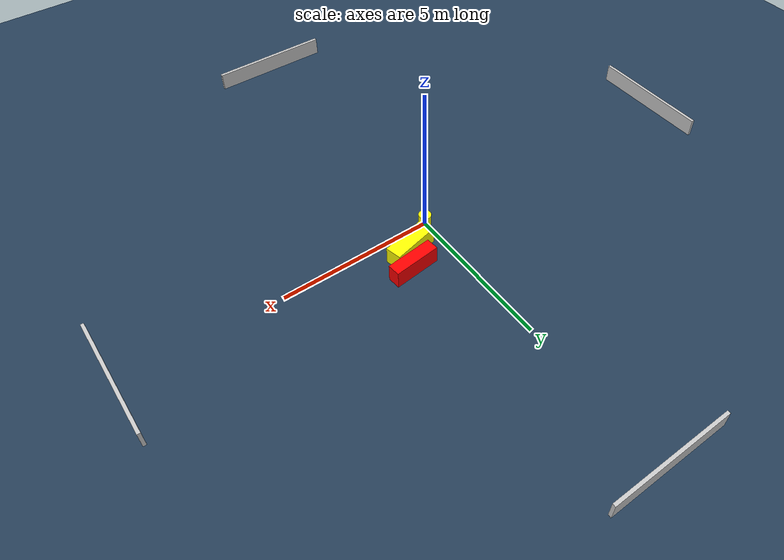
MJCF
<?xml version="1.0" ?>
<mujoco model="generated_environment">
  <option timestep="0.01" integrator="RK4" cone="elliptic"/>
  <default>
    <geom density="1"/>
  </default>
  <asset>
    <texture builtin="gradient" height="3072" name="skybox" rgb1="0.3 0.5 0.7" rgb2="0 0 0" type="skybox" width="512"/>
    <texture builtin="checker" height="300" name="groundplane" rgb1="0.2 0.3 0.4" rgb2="0.1 0.2 0.3" type="2d" width="300"/>
    <material name="groundplane" reflectance="0.2" texrepeat="5 5" texture="groundplane"/>
  </asset>
  <worldbody>
    <light dir="0 0 -1" directional="true" pos="0 0 1.5"/>
    <geom condim="3" friction="0.5 0.005 0.001" material="groundplane" name="floor" pos="0 0 0" size="0 0 0.05" type="plane"/>
    <body name="walls">
      <geom name="wall_1" condim="4" pos="-10.0 0.0 0.3" rgba="0.800000011920929 0.800000011920929 0.800000011920929 1.0" size="0.05 2.0 0.3" type="box"/>
      <geom name="wall_2" condim="4" pos="10.0 0.0 0.3" rgba="0.800000011920929 0.800000011920929 0.800000011920929 1.0" size="0.05 2.0 0.3" type="box"/>
      <geom name="wall_3" condim="4" pos="0.0 -10.0 0.3" rgba="0.800000011920929 0.800000011920929 0.800000011920929 1.0" size="2.0 0.05 0.3" type="box"/>
      <geom name="wall_4" condim="4" pos="0.0 10.0 0.3" rgba="0.800000011920929 0.800000011920929 0.800000011920929 1.0" size="2.0 0.05 0.3" type="box"/>
    </body>
    <body name="robot">
      <joint name="joint_x" type="slide" pos="0 0 0" axis="1 0 0"/>
      <joint name="joint_y" type="slide" pos="0 0 0" axis="0 1 0"/>
      <geom name="robot" type="cylinder" pos="0.0 0.0 0.2" size="0.2 0.2 0.0" mass="5.0" friction="1.0 0.005 0.0001" condim="4" rgba="1.0 1.0 0.0 1.0"/>
    </body>
    <body name="obstacle_1_movable">
      <geom name="obstacle_1_movable" condim="4" pos="1.0373608761684106 0.6930854998651316 0.3" euler="0 0 12.930726334915787" friction="0.0 0.005 0.001" rgba="1.0 1.0 0.0 1.0" size="0.7661729759211877 0.2602705858190364 0.3" type="box" mass="0.1"/>
      <joint type="free"/>
    </body>
    <body name="obstacle_2_static">
      <geom name="obstacle_2_static" condim="4" pos="1.3863539011569086 1.325481333814934 0.3" euler="0 0 5.992255121842378" friction="0.0 0.005 0.001" rgba="1.0 0.0 0.0 1.0" size="0.7574615137831071 0.2043794505493566 0.3" type="box"/>
    </body>
  </worldbody>
  <actuator>
    <motor name="actuator_x" joint="joint_x" gear="1" ctrlrange="-1 1"/>
    <motor name="actuator_y" joint="joint_y" gear="1" ctrlrange="-1 1"/>
  </actuator>
</mujoco>
